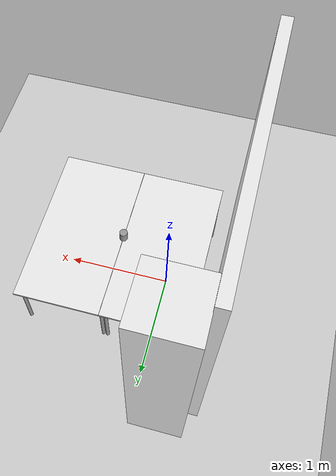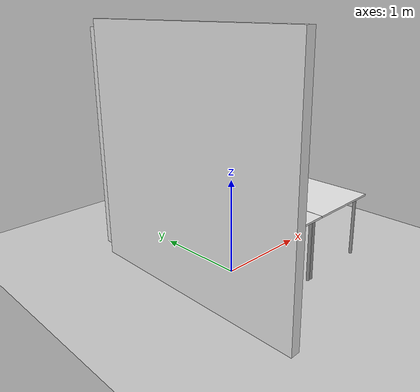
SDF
<sdf version="1.7">
 <world name="default">
  <model name="ground_plane">
   <static>1</static>
   <link name="link1">
    <collision name="collision">
     <geometry><plane><normal>0 0 1</normal><size>100 100</size></plane></geometry>
     <surface>
      <contact><collide_bitmask>65535</collide_bitmask></contact>
      <friction><ode><mu>100</mu><mu2>50</mu2></ode></friction>
     </surface>
    </collision>
    <visual name="visual">
     <cast_shadows>0</cast_shadows>
     <geometry><plane><normal>0 0 1</normal><size>100 100</size></plane></geometry>
     <material>
      <script><uri>file://media/materials/scripts/gazebo.material</uri><name>Gazebo/Grey</name></script>
     </material>
    </visual>
   </link>
  </model>
  <model name="table2">
   <link name="link2">
    <inertial>
     <inertia><ixx>0</ixx><ixy>0</ixy><ixz>0</ixz><iyy>0</iyy><iyz>0</iyz><izz>0</izz></inertia>
     <mass>0</mass>
    </inertial>
    <pose>0.011874 -0.057526 0 0 -0 0</pose>
    <visual name="back_left_leg">
     <pose>-0.68 0.38 0.35 0 -0 0</pose>
     <geometry><cylinder><radius>0.017374</radius><length>0.7</length></cylinder></geometry>
     <material>
      <script><uri>file://media/materials/scripts/gazebo.material</uri><name>Gazebo/Grey</name></script>
      <shader type="pixel"><normal_map>__default__</normal_map></shader>
      <ambient>0.3 0.3 0.3 1</ambient>
      <diffuse>0.7 0.7 0.7 1</diffuse>
      <specular>0.01 0.01 0.01 1</specular>
      <emissive>0 0 0 1</emissive>
     </material>
    </visual>
    <visual name="visual1">
     <pose>0 0 0.71 0 -0 0</pose>
     <geometry><box><size>1.58 0.8 0.019708</size></box></geometry>
     <material>
      <script><uri>file://media/materials/scripts/gazebo.material</uri><name>Gazebo/White</name></script>
      <shader type="pixel"><normal_map>__default__</normal_map></shader>
      <ambient>0.9 0.9 0.9 1</ambient>
      <diffuse>1 1 1 1</diffuse>
      <specular>0.2 0.2 0.2 1</specular>
      <emissive>0 0 0 1</emissive>
     </material>
    </visual>
    <visual name="front_left_leg">
     <pose>0.68 0.38 0.35 0 -0 0</pose>
     <geometry><cylinder><radius>0.017374</radius><length>0.7</length></cylinder></geometry>
     <material>
      <script><uri>file://media/materials/scripts/gazebo.material</uri><name>Gazebo/Grey</name></script>
      <shader type="pixel"><normal_map>__default__</normal_map></shader>
      <ambient>0.3 0.3 0.3 1</ambient>
      <diffuse>0.7 0.7 0.7 1</diffuse>
      <specular>0.01 0.01 0.01 1</specular>
      <emissive>0 0 0 1</emissive>
     </material>
    </visual>
    <visual name="back_right_leg">
     <pose>-0.68 -0.38 0.35 0 -0 0</pose>
     <geometry><cylinder><radius>0.017374</radius><length>0.7</length></cylinder></geometry>
     <material>
      <script><uri>file://media/materials/scripts/gazebo.material</uri><name>Gazebo/Grey</name></script>
      <shader type="pixel"><normal_map>__default__</normal_map></shader>
      <ambient>0.3 0.3 0.3 1</ambient>
      <diffuse>0.7 0.7 0.7 1</diffuse>
      <specular>0.01 0.01 0.01 1</specular>
      <emissive>0 0 0 1</emissive>
     </material>
    </visual>
    <visual name="front_right_leg">
     <pose>0.68 -0.38 0.35 0 -0 0</pose>
     <geometry><cylinder><radius>0.017374</radius><length>0.7</length></cylinder></geometry>
     <material>
      <script><uri>file://media/materials/scripts/gazebo.material</uri><name>Gazebo/Grey</name></script>
      <shader type="pixel"><normal_map>__default__</normal_map></shader>
      <ambient>0.3 0.3 0.3 1</ambient>
      <diffuse>0.7 0.7 0.7 1</diffuse>
      <specular>0.01 0.01 0.01 1</specular>
      <emissive>0 0 0 1</emissive>
     </material>
    </visual>
    <collision name="front_right_leg">
     <pose>0.68 -0.38 0.35 0 -0 0</pose>
     <geometry><cylinder><radius>0.017374</radius><length>0.7</length></cylinder></geometry>
     <surface>
      <friction>
       <ode><mu>1</mu><mu2>1</mu2><fdir1>0 0 0</fdir1><slip1>0</slip1><slip2>0</slip2></ode>
       <torsional>
        <coefficient>1</coefficient>
        <patch_radius>0</patch_radius>
        <surface_radius>0</surface_radius>
        <use_patch_radius>1</use_patch_radius>
        <ode><slip>0</slip></ode>
       </torsional>
      </friction>
      <bounce><restitution_coefficient>0</restitution_coefficient><threshold>1e+06</threshold></bounce>
      <contact>
       <collide_without_contact>0</collide_without_contact>
       <collide_without_contact_bitmask>1</collide_without_contact_bitmask>
       <collide_bitmask>1</collide_bitmask>
       <ode>
        <soft_cfm>0</soft_cfm>
        <soft_erp>0.2</soft_erp>
        <kp>1e+13</kp>
        <kd>1</kd>
        <max_vel>0.01</max_vel>
        <min_depth>0</min_depth>
       </ode>
       <bullet>
        <split_impulse>1</split_impulse>
        <split_impulse_penetration_threshold>-0.01</split_impulse_penetration_threshold>
        <soft_cfm>0</soft_cfm>
        <soft_erp>0.2</soft_erp>
        <kp>1e+13</kp>
        <kd>1</kd>
       </bullet>
      </contact>
     </surface>
    </collision>
    <collision name="surface">
     <pose>0 0 0.71 0 -0 0</pose>
     <geometry><box><size>1.58 0.8 0.019708</size></box></geometry>
     <surface>
      <friction>
       <ode><mu>0.6</mu><mu2>0.6</mu2><fdir1>0 0 0</fdir1><slip1>0</slip1><slip2>0</slip2></ode>
       <torsional>
        <coefficient>1</coefficient>
        <patch_radius>0</patch_radius>
        <surface_radius>0</surface_radius>
        <use_patch_radius>1</use_patch_radius>
        <ode><slip>0</slip></ode>
       </torsional>
      </friction>
      <bounce><restitution_coefficient>0</restitution_coefficient><threshold>1e+06</threshold></bounce>
      <contact>
       <collide_without_contact>0</collide_without_contact>
       <collide_without_contact_bitmask>1</collide_without_contact_bitmask>
       <collide_bitmask>1</collide_bitmask>
       <ode>
        <soft_cfm>0</soft_cfm>
        <soft_erp>0.2</soft_erp>
        <kp>1e+13</kp>
        <kd>1</kd>
        <max_vel>0.01</max_vel>
        <min_depth>0</min_depth>
       </ode>
       <bullet>
        <split_impulse>1</split_impulse>
        <split_impulse_penetration_threshold>-0.01</split_impulse_penetration_threshold>
        <soft_cfm>0</soft_cfm>
        <soft_erp>0.2</soft_erp>
        <kp>1e+13</kp>
        <kd>1</kd>
       </bullet>
      </contact>
     </surface>
    </collision>
    <collision name="front_left_leg">
     <pose>0.68 0.38 0.35 0 -0 0</pose>
     <geometry><cylinder><radius>0.017374</radius><length>0.7</length></cylinder></geometry>
     <surface>
      <friction>
       <ode><mu>1</mu><mu2>1</mu2><fdir1>0 0 0</fdir1><slip1>0</slip1><slip2>0</slip2></ode>
       <torsional>
        <coefficient>1</coefficient>
        <patch_radius>0</patch_radius>
        <surface_radius>0</surface_radius>
        <use_patch_radius>1</use_patch_radius>
        <ode><slip>0</slip></ode>
       </torsional>
      </friction>
      <bounce><restitution_coefficient>0</restitution_coefficient><threshold>1e+06</threshold></bounce>
      <contact>
       <collide_without_contact>0</collide_without_contact>
       <collide_without_contact_bitmask>1</collide_without_contact_bitmask>
       <collide_bitmask>1</collide_bitmask>
       <ode>
        <soft_cfm>0</soft_cfm>
        <soft_erp>0.2</soft_erp>
        <kp>1e+13</kp>
        <kd>1</kd>
        <max_vel>0.01</max_vel>
        <min_depth>0</min_depth>
       </ode>
       <bullet>
        <split_impulse>1</split_impulse>
        <split_impulse_penetration_threshold>-0.01</split_impulse_penetration_threshold>
        <soft_cfm>0</soft_cfm>
        <soft_erp>0.2</soft_erp>
        <kp>1e+13</kp>
        <kd>1</kd>
       </bullet>
      </contact>
     </surface>
    </collision>
    <collision name="back_left_leg">
     <pose>-0.68 0.38 0.35 0 -0 0</pose>
     <geometry><cylinder><radius>0.017374</radius><length>0.7</length></cylinder></geometry>
     <surface>
      <friction>
       <ode><mu>1</mu><mu2>1</mu2><fdir1>0 0 0</fdir1><slip1>0</slip1><slip2>0</slip2></ode>
       <torsional>
        <coefficient>1</coefficient>
        <patch_radius>0</patch_radius>
        <surface_radius>0</surface_radius>
        <use_patch_radius>1</use_patch_radius>
        <ode><slip>0</slip></ode>
       </torsional>
      </friction>
      <bounce><restitution_coefficient>0</restitution_coefficient><threshold>1e+06</threshold></bounce>
      <contact>
       <collide_without_contact>0</collide_without_contact>
       <collide_without_contact_bitmask>1</collide_without_contact_bitmask>
       <collide_bitmask>1</collide_bitmask>
       <ode>
        <soft_cfm>0</soft_cfm>
        <soft_erp>0.2</soft_erp>
        <kp>1e+13</kp>
        <kd>1</kd>
        <max_vel>0.01</max_vel>
        <min_depth>0</min_depth>
       </ode>
       <bullet>
        <split_impulse>1</split_impulse>
        <split_impulse_penetration_threshold>-0.01</split_impulse_penetration_threshold>
        <soft_cfm>0</soft_cfm>
        <soft_erp>0.2</soft_erp>
        <kp>1e+13</kp>
        <kd>1</kd>
       </bullet>
      </contact>
     </surface>
    </collision>
    <collision name="back_right_leg">
     <pose>-0.68 -0.38 0.35 0 -0 0</pose>
     <geometry><cylinder><radius>0.017374</radius><length>0.7</length></cylinder></geometry>
     <surface>
      <friction>
       <ode><mu>1</mu><mu2>1</mu2><fdir1>0 0 0</fdir1><slip1>0</slip1><slip2>0</slip2></ode>
       <torsional>
        <coefficient>1</coefficient>
        <patch_radius>0</patch_radius>
        <surface_radius>0</surface_radius>
        <use_patch_radius>1</use_patch_radius>
        <ode><slip>0</slip></ode>
       </torsional>
      </friction>
      <bounce><restitution_coefficient>0</restitution_coefficient><threshold>1e+06</threshold></bounce>
      <contact>
       <collide_without_contact>0</collide_without_contact>
       <collide_without_contact_bitmask>1</collide_without_contact_bitmask>
       <collide_bitmask>1</collide_bitmask>
       <ode>
        <soft_cfm>0</soft_cfm>
        <soft_erp>0.2</soft_erp>
        <kp>1e+13</kp>
        <kd>1</kd>
        <max_vel>0.01</max_vel>
        <min_depth>0</min_depth>
       </ode>
       <bullet>
        <split_impulse>1</split_impulse>
        <split_impulse_penetration_threshold>-0.01</split_impulse_penetration_threshold>
        <soft_cfm>0</soft_cfm>
        <soft_erp>0.2</soft_erp>
        <kp>1e+13</kp>
        <kd>1</kd>
       </bullet>
      </contact>
     </surface>
    </collision>
   </link>
   <link name="link_0">
    <inertial>
     <mass>0.605339</mass>
     <inertia>
      <ixx>0.300898</ixx>
      <ixy>0</ixy>
      <ixz>0</ixz>
      <iyy>0.301339</iyy>
      <iyz>0</iyz>
      <izz>0.025546</izz>
     </inertia>
    </inertial>
    <pose>1.2342 0.24 1.21333 0 0 -1.57</pose>
    <visual name="visual">
     <geometry><box><size>0.507519 0.498836 2.39082</size></box></geometry>
     <material>
      <lighting>1</lighting>
      <script><uri>file://media/materials/scripts/gazebo.material</uri><name>Gazebo/White</name></script>
      <shader type="pixel"><normal_map>__default__</normal_map></shader>
      <ambient>0.6 0.6 0.6 1</ambient>
      <diffuse>0.8 0.8 0.8 1</diffuse>
      <specular>0.2 0.2 0.2 1</specular>
      <emissive>0 0 0 1</emissive>
     </material>
    </visual>
    <collision name="collision">
     <geometry><box><size>0.507519 0.498836 2.39082</size></box></geometry>
     <surface>
      <friction>
       <ode><mu>1</mu><mu2>1</mu2><fdir1>0 0 0</fdir1><slip1>0</slip1><slip2>0</slip2></ode>
       <torsional>
        <coefficient>1</coefficient>
        <patch_radius>0</patch_radius>
        <surface_radius>0</surface_radius>
        <use_patch_radius>1</use_patch_radius>
        <ode><slip>0</slip></ode>
       </torsional>
      </friction>
      <bounce><restitution_coefficient>0</restitution_coefficient><threshold>1e+06</threshold></bounce>
      <contact>
       <collide_without_contact>0</collide_without_contact>
       <collide_without_contact_bitmask>1</collide_without_contact_bitmask>
       <collide_bitmask>1</collide_bitmask>
       <ode>
        <soft_cfm>0</soft_cfm>
        <soft_erp>0.2</soft_erp>
        <kp>1e+13</kp>
        <kd>1</kd>
        <max_vel>0.01</max_vel>
        <min_depth>0</min_depth>
       </ode>
       <bullet>
        <split_impulse>1</split_impulse>
        <split_impulse_penetration_threshold>-0.01</split_impulse_penetration_threshold>
        <soft_cfm>0</soft_cfm>
        <soft_erp>0.2</soft_erp>
        <kp>1e+13</kp>
        <kd>1</kd>
       </bullet>
      </contact>
     </surface>
    </collision>
   </link>
   <link name="link_1">
    <inertial>
     <mass>2.83509</mass>
     <inertia><ixx>2.13522</ixx><ixy>0</ixy><ixz>0</ixz><iyy>2.13522</iyy><iyz>0</iyz><izz>0.472514</izz></inertia>
    </inertial>
    <pose>-0 0.54 1.2435 0 0 -1.57</pose>
    <visual name="visual">
     <geometry><box><size>0.1 2.5 2.5</size></box></geometry>
     <material>
      <lighting>1</lighting>
      <script><uri>file://media/materials/scripts/gazebo.material</uri><name>Gazebo/White</name></script>
      <shader type="pixel"><normal_map>__default__</normal_map></shader>
      <ambient>0.919 0.931 0.98 1</ambient>
      <diffuse>1 1 1 1</diffuse>
      <specular>0.2 0.2 0.2 1</specular>
      <emissive>0 0 0 1</emissive>
     </material>
    </visual>
    <collision name="collision">
     <geometry><box><size>0.1 2.5 2.5</size></box></geometry>
     <surface>
      <friction>
       <ode><mu>1</mu><mu2>1</mu2><fdir1>0 0 0</fdir1><slip1>0</slip1><slip2>0</slip2></ode>
       <torsional>
        <coefficient>1</coefficient>
        <patch_radius>0</patch_radius>
        <surface_radius>0</surface_radius>
        <use_patch_radius>1</use_patch_radius>
        <ode><slip>0</slip></ode>
       </torsional>
      </friction>
      <bounce><restitution_coefficient>0</restitution_coefficient><threshold>1e+06</threshold></bounce>
      <contact>
       <collide_without_contact>0</collide_without_contact>
       <collide_without_contact_bitmask>1</collide_without_contact_bitmask>
       <collide_bitmask>1</collide_bitmask>
       <ode>
        <soft_cfm>0</soft_cfm>
        <soft_erp>0.2</soft_erp>
        <kp>1e+13</kp>
        <kd>1</kd>
        <max_vel>0.01</max_vel>
        <min_depth>0</min_depth>
       </ode>
       <bullet>
        <split_impulse>1</split_impulse>
        <split_impulse_penetration_threshold>-0.01</split_impulse_penetration_threshold>
        <soft_cfm>0</soft_cfm>
        <soft_erp>0.2</soft_erp>
        <kp>1e+13</kp>
        <kd>1</kd>
       </bullet>
      </contact>
     </surface>
    </collision>
   </link>
   <static>1</static>
   <pose>-0.022089 0.010177 0 0 -0 1.57</pose>
  </model>
  <model name="table2_2">
   <link name="link2">
    <inertial>
     <inertia><ixx>0</ixx><ixy>0</ixy><ixz>0</ixz><iyy>0</iyy><iyz>0</iyz><izz>0</izz></inertia>
     <mass>0</mass>
    </inertial>
    <pose>0.011874 -0.057526 0 0 -0 0</pose>
    <visual name="back_left_leg">
     <pose>-0.68 0.38 0.35 0 -0 0</pose>
     <geometry><cylinder><radius>0.017374</radius><length>0.7</length></cylinder></geometry>
     <material>
      <script><uri>file://media/materials/scripts/gazebo.material</uri><name>Gazebo/Grey</name></script>
      <shader type="pixel"><normal_map>__default__</normal_map></shader>
      <ambient>0.3 0.3 0.3 1</ambient>
      <diffuse>0.7 0.7 0.7 1</diffuse>
      <specular>0.01 0.01 0.01 1</specular>
      <emissive>0 0 0 1</emissive>
     </material>
    </visual>
    <visual name="visual1">
     <pose>0 0 0.71 0 -0 0</pose>
     <geometry><box><size>1.58 0.8 0.019708</size></box></geometry>
     <material>
      <script><uri>file://media/materials/scripts/gazebo.material</uri><name>Gazebo/White</name></script>
      <shader type="pixel"><normal_map>__default__</normal_map></shader>
      <ambient>0.9 0.9 0.9 1</ambient>
      <diffuse>1 1 1 1</diffuse>
      <specular>0.2 0.2 0.2 1</specular>
      <emissive>0 0 0 1</emissive>
     </material>
    </visual>
    <visual name="front_left_leg">
     <pose>0.68 0.38 0.35 0 -0 0</pose>
     <geometry><cylinder><radius>0.017374</radius><length>0.7</length></cylinder></geometry>
     <material>
      <script><uri>file://media/materials/scripts/gazebo.material</uri><name>Gazebo/Grey</name></script>
      <shader type="pixel"><normal_map>__default__</normal_map></shader>
      <ambient>0.3 0.3 0.3 1</ambient>
      <diffuse>0.7 0.7 0.7 1</diffuse>
      <specular>0.01 0.01 0.01 1</specular>
      <emissive>0 0 0 1</emissive>
     </material>
    </visual>
    <visual name="back_right_leg">
     <pose>-0.68 -0.38 0.35 0 -0 0</pose>
     <geometry><cylinder><radius>0.017374</radius><length>0.7</length></cylinder></geometry>
     <material>
      <script><uri>file://media/materials/scripts/gazebo.material</uri><name>Gazebo/Grey</name></script>
      <shader type="pixel"><normal_map>__default__</normal_map></shader>
      <ambient>0.3 0.3 0.3 1</ambient>
      <diffuse>0.7 0.7 0.7 1</diffuse>
      <specular>0.01 0.01 0.01 1</specular>
      <emissive>0 0 0 1</emissive>
     </material>
    </visual>
    <visual name="front_right_leg">
     <pose>0.68 -0.38 0.35 0 -0 0</pose>
     <geometry><cylinder><radius>0.017374</radius><length>0.7</length></cylinder></geometry>
     <material>
      <script><uri>file://media/materials/scripts/gazebo.material</uri><name>Gazebo/Grey</name></script>
      <shader type="pixel"><normal_map>__default__</normal_map></shader>
      <ambient>0.3 0.3 0.3 1</ambient>
      <diffuse>0.7 0.7 0.7 1</diffuse>
      <specular>0.01 0.01 0.01 1</specular>
      <emissive>0 0 0 1</emissive>
     </material>
    </visual>
    <collision name="front_right_leg">
     <pose>0.68 -0.38 0.35 0 -0 0</pose>
     <geometry><cylinder><radius>0.017374</radius><length>0.7</length></cylinder></geometry>
     <surface>
      <friction>
       <ode><mu>1</mu><mu2>1</mu2><fdir1>0 0 0</fdir1><slip1>0</slip1><slip2>0</slip2></ode>
       <torsional>
        <coefficient>1</coefficient>
        <patch_radius>0</patch_radius>
        <surface_radius>0</surface_radius>
        <use_patch_radius>1</use_patch_radius>
        <ode><slip>0</slip></ode>
       </torsional>
      </friction>
      <bounce><restitution_coefficient>0</restitution_coefficient><threshold>1e+06</threshold></bounce>
      <contact>
       <collide_without_contact>0</collide_without_contact>
       <collide_without_contact_bitmask>1</collide_without_contact_bitmask>
       <collide_bitmask>1</collide_bitmask>
       <ode>
        <soft_cfm>0</soft_cfm>
        <soft_erp>0.2</soft_erp>
        <kp>1e+13</kp>
        <kd>1</kd>
        <max_vel>0.01</max_vel>
        <min_depth>0</min_depth>
       </ode>
       <bullet>
        <split_impulse>1</split_impulse>
        <split_impulse_penetration_threshold>-0.01</split_impulse_penetration_threshold>
        <soft_cfm>0</soft_cfm>
        <soft_erp>0.2</soft_erp>
        <kp>1e+13</kp>
        <kd>1</kd>
       </bullet>
      </contact>
     </surface>
    </collision>
    <collision name="surface">
     <pose>0 0 0.71 0 -0 0</pose>
     <geometry><box><size>1.58 0.8 0.019708</size></box></geometry>
     <surface>
      <friction>
       <ode><mu>0.6</mu><mu2>0.6</mu2><fdir1>0 0 0</fdir1><slip1>0</slip1><slip2>0</slip2></ode>
       <torsional>
        <coefficient>1</coefficient>
        <patch_radius>0</patch_radius>
        <surface_radius>0</surface_radius>
        <use_patch_radius>1</use_patch_radius>
        <ode><slip>0</slip></ode>
       </torsional>
      </friction>
      <bounce><restitution_coefficient>0</restitution_coefficient><threshold>1e+06</threshold></bounce>
      <contact>
       <collide_without_contact>0</collide_without_contact>
       <collide_without_contact_bitmask>1</collide_without_contact_bitmask>
       <collide_bitmask>1</collide_bitmask>
       <ode>
        <soft_cfm>0</soft_cfm>
        <soft_erp>0.2</soft_erp>
        <kp>1e+13</kp>
        <kd>1</kd>
        <max_vel>0.01</max_vel>
        <min_depth>0</min_depth>
       </ode>
       <bullet>
        <split_impulse>1</split_impulse>
        <split_impulse_penetration_threshold>-0.01</split_impulse_penetration_threshold>
        <soft_cfm>0</soft_cfm>
        <soft_erp>0.2</soft_erp>
        <kp>1e+13</kp>
        <kd>1</kd>
       </bullet>
      </contact>
     </surface>
    </collision>
    <collision name="front_left_leg">
     <pose>0.68 0.38 0.35 0 -0 0</pose>
     <geometry><cylinder><radius>0.017374</radius><length>0.7</length></cylinder></geometry>
     <surface>
      <friction>
       <ode><mu>1</mu><mu2>1</mu2><fdir1>0 0 0</fdir1><slip1>0</slip1><slip2>0</slip2></ode>
       <torsional>
        <coefficient>1</coefficient>
        <patch_radius>0</patch_radius>
        <surface_radius>0</surface_radius>
        <use_patch_radius>1</use_patch_radius>
        <ode><slip>0</slip></ode>
       </torsional>
      </friction>
      <bounce><restitution_coefficient>0</restitution_coefficient><threshold>1e+06</threshold></bounce>
      <contact>
       <collide_without_contact>0</collide_without_contact>
       <collide_without_contact_bitmask>1</collide_without_contact_bitmask>
       <collide_bitmask>1</collide_bitmask>
       <ode>
        <soft_cfm>0</soft_cfm>
        <soft_erp>0.2</soft_erp>
        <kp>1e+13</kp>
        <kd>1</kd>
        <max_vel>0.01</max_vel>
        <min_depth>0</min_depth>
       </ode>
       <bullet>
        <split_impulse>1</split_impulse>
        <split_impulse_penetration_threshold>-0.01</split_impulse_penetration_threshold>
        <soft_cfm>0</soft_cfm>
        <soft_erp>0.2</soft_erp>
        <kp>1e+13</kp>
        <kd>1</kd>
       </bullet>
      </contact>
     </surface>
    </collision>
    <collision name="back_left_leg">
     <pose>-0.68 0.38 0.35 0 -0 0</pose>
     <geometry><cylinder><radius>0.017374</radius><length>0.7</length></cylinder></geometry>
     <surface>
      <friction>
       <ode><mu>1</mu><mu2>1</mu2><fdir1>0 0 0</fdir1><slip1>0</slip1><slip2>0</slip2></ode>
       <torsional>
        <coefficient>1</coefficient>
        <patch_radius>0</patch_radius>
        <surface_radius>0</surface_radius>
        <use_patch_radius>1</use_patch_radius>
        <ode><slip>0</slip></ode>
       </torsional>
      </friction>
      <bounce><restitution_coefficient>0</restitution_coefficient><threshold>1e+06</threshold></bounce>
      <contact>
       <collide_without_contact>0</collide_without_contact>
       <collide_without_contact_bitmask>1</collide_without_contact_bitmask>
       <collide_bitmask>1</collide_bitmask>
       <ode>
        <soft_cfm>0</soft_cfm>
        <soft_erp>0.2</soft_erp>
        <kp>1e+13</kp>
        <kd>1</kd>
        <max_vel>0.01</max_vel>
        <min_depth>0</min_depth>
       </ode>
       <bullet>
        <split_impulse>1</split_impulse>
        <split_impulse_penetration_threshold>-0.01</split_impulse_penetration_threshold>
        <soft_cfm>0</soft_cfm>
        <soft_erp>0.2</soft_erp>
        <kp>1e+13</kp>
        <kd>1</kd>
       </bullet>
      </contact>
     </surface>
    </collision>
    <collision name="back_right_leg">
     <pose>-0.68 -0.38 0.35 0 -0 0</pose>
     <geometry><cylinder><radius>0.017374</radius><length>0.7</length></cylinder></geometry>
     <surface>
      <friction>
       <ode><mu>1</mu><mu2>1</mu2><fdir1>0 0 0</fdir1><slip1>0</slip1><slip2>0</slip2></ode>
       <torsional>
        <coefficient>1</coefficient>
        <patch_radius>0</patch_radius>
        <surface_radius>0</surface_radius>
        <use_patch_radius>1</use_patch_radius>
        <ode><slip>0</slip></ode>
       </torsional>
      </friction>
      <bounce><restitution_coefficient>0</restitution_coefficient><threshold>1e+06</threshold></bounce>
      <contact>
       <collide_without_contact>0</collide_without_contact>
       <collide_without_contact_bitmask>1</collide_without_contact_bitmask>
       <collide_bitmask>1</collide_bitmask>
       <ode>
        <soft_cfm>0</soft_cfm>
        <soft_erp>0.2</soft_erp>
        <kp>1e+13</kp>
        <kd>1</kd>
        <max_vel>0.01</max_vel>
        <min_depth>0</min_depth>
       </ode>
       <bullet>
        <split_impulse>1</split_impulse>
        <split_impulse_penetration_threshold>-0.01</split_impulse_penetration_threshold>
        <soft_cfm>0</soft_cfm>
        <soft_erp>0.2</soft_erp>
        <kp>1e+13</kp>
        <kd>1</kd>
       </bullet>
      </contact>
     </surface>
    </collision>
   </link>
   <static>1</static>
   <pose>0.894949 0.033675 0 0 0 -1.57117</pose>
  </model>
  <model name="unit_cylinder">
   <pose>0.434073 4.6e-05 0.769062 -0.000105 -7e-06 -0.000221</pose>
   <link name="link">
    <inertial>
     <mass>1</mass>
     <inertia><ixx>0.145833</ixx><ixy>0</ixy><ixz>0</ixz><iyy>0.145833</iyy><iyz>0</iyz><izz>0.125</izz></inertia>
    </inertial>
    <collision name="collision">
     <geometry><cylinder><radius>0.037409</radius><length>0.0984278</length></cylinder></geometry>
    </collision>
    <visual name="visual">
     <geometry><cylinder><radius>0.037409</radius><length>0.0984278</length></cylinder></geometry>
     <material>
      <script><name>Gazebo/Grey</name><uri>file://media/materials/scripts/gazebo.material</uri></script>
     </material>
    </visual>
   </link>
  </model>
 </world>
</sdf>
